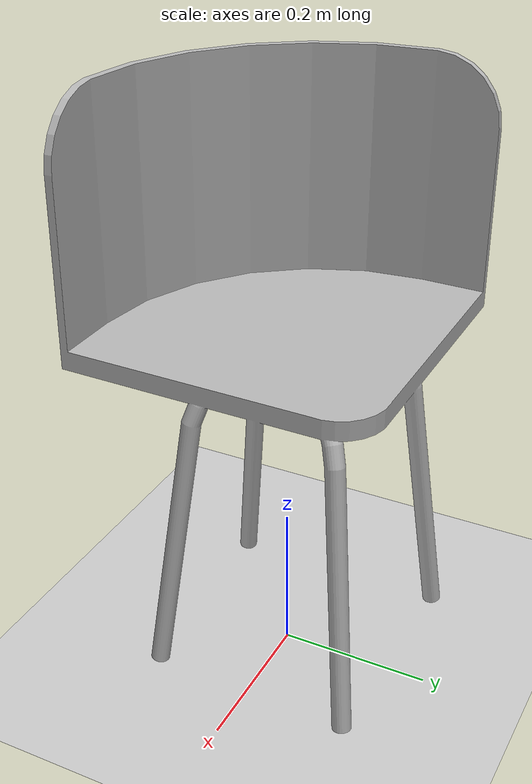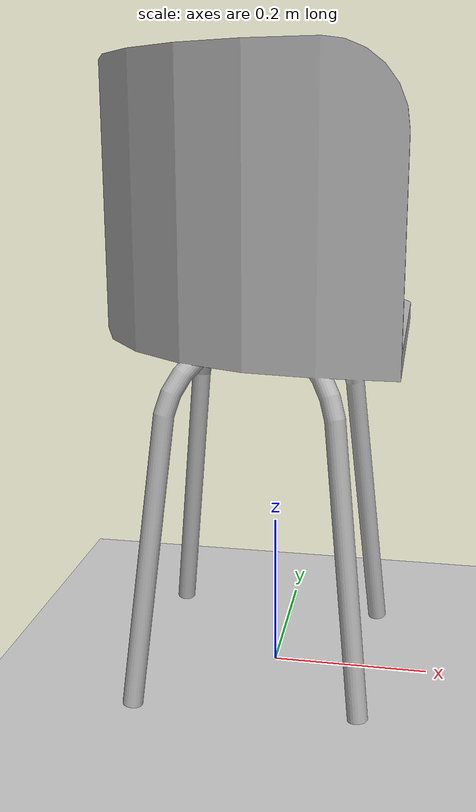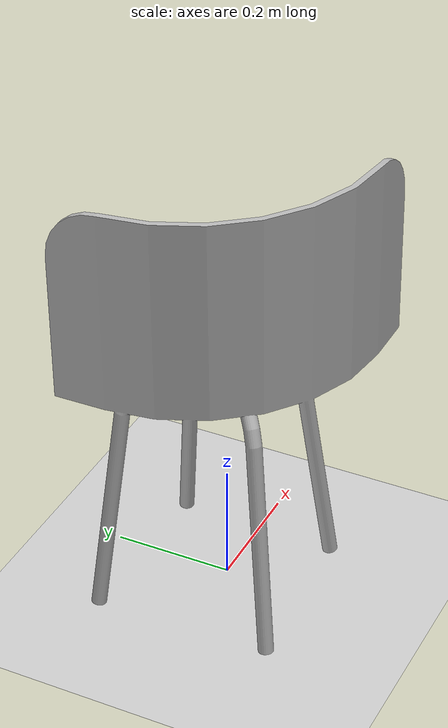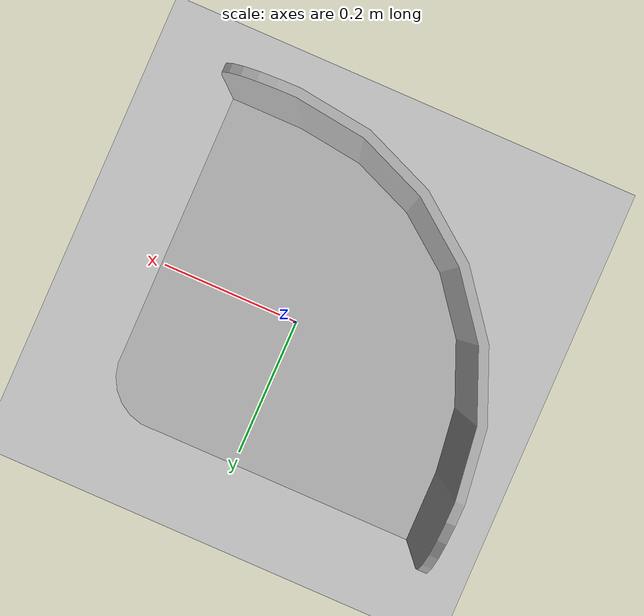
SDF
<?xml version="1.0" ?>
<sdf version="1.5">
  <world name="default">
    <physics type="ode">
      <ode>
      </ode>
    </physics>
    <include>
      <uri>model://sun</uri>
    </include>
    <include>
      <uri>model://ground_plane</uri>
    </include>
    <include>
      <pose>0.5 0.25 0 0 0 3.14159</pose>
      <uri>model://IKEA_chair_FUSION</uri>
    </include>
  </world>
</sdf>

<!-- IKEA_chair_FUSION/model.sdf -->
<sdf version='1.0'>
  <model name='IKEA_chair_FUSION'>
    <static>0</static>
    <link name='link_0'>
      <inertial>
        <mass>0.8350323594039345</mass>
        <inertia>
          <ixx>2614.381594064976</ixx>
          <ixy>103.02306454109696</ixy>
          <ixz>113.77349566668076</ixz>
          <iyy>1036.9141533328789</iyy>
          <iyz>-155.38674371933675</iyz>
          <izz>2607.356921066834</izz>
        </inertia>
        <pose frame=''>0.526684 0.367661 -0.264543 0 -0 0</pose>
      </inertial>
      <pose frame=''>0 0 0 0 -0 0</pose>
      <visual name='visual'>
        <pose frame=''>0 0 0 1.58096 -0 0</pose>
        <geometry>
          <mesh>
            <uri>model://ikea_models/meshes/IKEA_chair_FUSION/nojitter_png_fusion_table_2_obj0/fusion_table_2_obj0_object.obj</uri>
            <scale>0.025400 0.025400 0.025400</scale>
          </mesh>
        </geometry>
      </visual>
      <collision name='collision'>
        <pose frame=''>0 0 0 1.58096 -0 0</pose>
        <geometry>
          <mesh>
            <uri>model://ikea_models/meshes/IKEA_chair_FUSION/nojitter_png_fusion_table_2_obj0/fusion_table_2_obj0_object.obj</uri>
            <scale>0.025400 0.025400 0.025400</scale>
          </mesh>
        </geometry>
      </collision>
    </link>
  </model>
</sdf>
